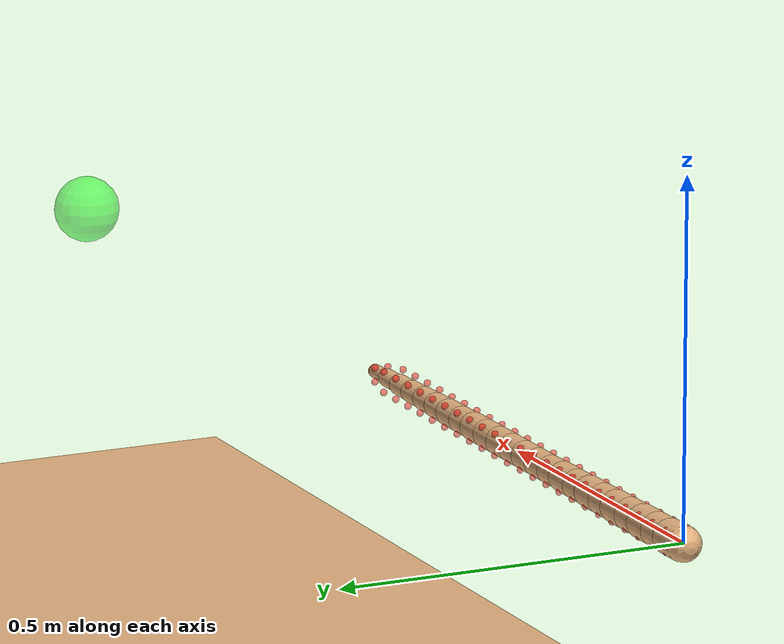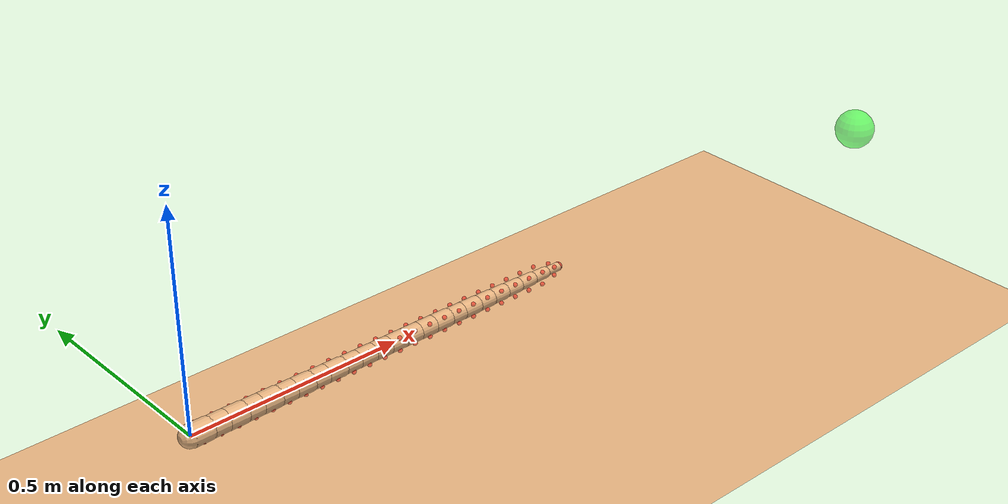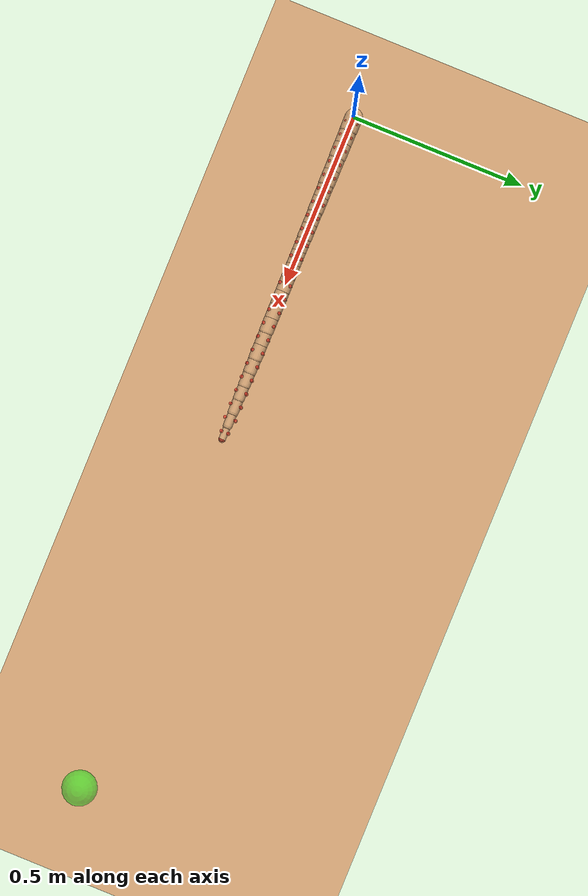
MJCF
<!-- C. elegans MuJoCo Model
     24 segments with 96 muscles (4 strings x 24)
     Based on BAAI WORM paper anatomy
-->
<mujoco model="c_elegans">
  <compiler angle="radian" coordinate="local"/>

  <option timestep="0.002" gravity="0 0 -9.81" integrator="implicit">
    <flag warmstart="enable"/>
  </option>
  <!-- Low gravity to keep worm grounded, swimming approximated by low friction -->

  <default>
    <joint damping="0.5" stiffness="0.1" armature="0.01" limited="true"/>
    <geom type="capsule" size="0.02" rgba="0.9 0.7 0.5 1" friction="0.1 0.01 0.001" density="1000"/>
    <motor ctrllimited="true" ctrlrange="-1 1" gear="0.1"/>
    <site size="0.005" rgba="1 0 0 0.5"/>
  </default>

  <asset>
    <texture type="skybox" builtin="gradient" rgb1="0.3 0.5 0.7" rgb2="0 0 0" width="512" height="512"/>
    <texture name="grid" type="2d" builtin="checker" width="512" height="512" rgb1="0.1 0.2 0.3" rgb2="0.2 0.3 0.4"/>
    <material name="grid" texture="grid" texrepeat="8 8" reflectance="0.2"/>
  </asset>

  <worldbody>
    <light pos="0 0 3" dir="0 0 -1" diffuse="1 1 1"/>
    <geom name="floor" type="plane" size="5 5 0.1" pos="0 0 -0.5" material="grid"/>

    <!-- Head segment (segment 0) -->
    <body name="seg_0" pos="0 0 0">
      <freejoint name="root"/>
      <geom name="geom_0" fromto="0 0 0 0.04 0 0" size="0.025"/>
      <site name="head" pos="0 0 0" size="0.01"/>

      <!-- Sensory sites on head -->
      <site name="sensor_left" pos="0.01 0.02 0" size="0.005"/>
      <site name="sensor_right" pos="0.01 -0.02 0" size="0.005"/>

      <!-- Muscle attachment sites for segment 0 -->
      <site name="DR_0" pos="0.02 -0.015 0.015"/>
      <site name="DL_0" pos="0.02 0.015 0.015"/>
      <site name="VR_0" pos="0.02 -0.015 -0.015"/>
      <site name="VL_0" pos="0.02 0.015 -0.015"/>

      <!-- Segment 1 -->
      <body name="seg_1" pos="0.04 0 0">
        <joint name="joint_1_dv" type="hinge" axis="0 1 0" range="-0.5 0.5"/>
        <joint name="joint_1_lr" type="hinge" axis="0 0 1" range="-0.3 0.3"/>
        <geom name="geom_1" fromto="0 0 0 0.04 0 0" size="0.024"/>
        <site name="DR_1" pos="0.02 -0.015 0.015"/>
        <site name="DL_1" pos="0.02 0.015 0.015"/>
        <site name="VR_1" pos="0.02 -0.015 -0.015"/>
        <site name="VL_1" pos="0.02 0.015 -0.015"/>

        <!-- Segment 2 -->
        <body name="seg_2" pos="0.04 0 0">
          <joint name="joint_2_dv" type="hinge" axis="0 1 0" range="-0.5 0.5"/>
          <joint name="joint_2_lr" type="hinge" axis="0 0 1" range="-0.3 0.3"/>
          <geom name="geom_2" fromto="0 0 0 0.04 0 0" size="0.024"/>
          <site name="DR_2" pos="0.02 -0.015 0.015"/>
          <site name="DL_2" pos="0.02 0.015 0.015"/>
          <site name="VR_2" pos="0.02 -0.015 -0.015"/>
          <site name="VL_2" pos="0.02 0.015 -0.015"/>

          <!-- Segment 3 -->
          <body name="seg_3" pos="0.04 0 0">
            <joint name="joint_3_dv" type="hinge" axis="0 1 0" range="-0.5 0.5"/>
            <joint name="joint_3_lr" type="hinge" axis="0 0 1" range="-0.3 0.3"/>
            <geom name="geom_3" fromto="0 0 0 0.04 0 0" size="0.023"/>
            <site name="DR_3" pos="0.02 -0.015 0.015"/>
            <site name="DL_3" pos="0.02 0.015 0.015"/>
            <site name="VR_3" pos="0.02 -0.015 -0.015"/>
            <site name="VL_3" pos="0.02 0.015 -0.015"/>

            <!-- Segment 4 -->
            <body name="seg_4" pos="0.04 0 0">
              <joint name="joint_4_dv" type="hinge" axis="0 1 0" range="-0.5 0.5"/>
              <joint name="joint_4_lr" type="hinge" axis="0 0 1" range="-0.3 0.3"/>
              <geom name="geom_4" fromto="0 0 0 0.04 0 0" size="0.023"/>
              <site name="DR_4" pos="0.02 -0.015 0.015"/>
              <site name="DL_4" pos="0.02 0.015 0.015"/>
              <site name="VR_4" pos="0.02 -0.015 -0.015"/>
              <site name="VL_4" pos="0.02 0.015 -0.015"/>

              <!-- Segment 5 -->
              <body name="seg_5" pos="0.04 0 0">
                <joint name="joint_5_dv" type="hinge" axis="0 1 0" range="-0.5 0.5"/>
                <joint name="joint_5_lr" type="hinge" axis="0 0 1" range="-0.3 0.3"/>
                <geom name="geom_5" fromto="0 0 0 0.04 0 0" size="0.022"/>
                <site name="DR_5" pos="0.02 -0.015 0.015"/>
                <site name="DL_5" pos="0.02 0.015 0.015"/>
                <site name="VR_5" pos="0.02 -0.015 -0.015"/>
                <site name="VL_5" pos="0.02 0.015 -0.015"/>

                <!-- Segment 6 -->
                <body name="seg_6" pos="0.04 0 0">
                  <joint name="joint_6_dv" type="hinge" axis="0 1 0" range="-0.5 0.5"/>
                  <joint name="joint_6_lr" type="hinge" axis="0 0 1" range="-0.3 0.3"/>
                  <geom name="geom_6" fromto="0 0 0 0.04 0 0" size="0.022"/>
                  <site name="DR_6" pos="0.02 -0.015 0.015"/>
                  <site name="DL_6" pos="0.02 0.015 0.015"/>
                  <site name="VR_6" pos="0.02 -0.015 -0.015"/>
                  <site name="VL_6" pos="0.02 0.015 -0.015"/>

                  <!-- Segment 7 -->
                  <body name="seg_7" pos="0.04 0 0">
                    <joint name="joint_7_dv" type="hinge" axis="0 1 0" range="-0.5 0.5"/>
                    <joint name="joint_7_lr" type="hinge" axis="0 0 1" range="-0.3 0.3"/>
                    <geom name="geom_7" fromto="0 0 0 0.04 0 0" size="0.021"/>
                    <site name="DR_7" pos="0.02 -0.015 0.015"/>
                    <site name="DL_7" pos="0.02 0.015 0.015"/>
                    <site name="VR_7" pos="0.02 -0.015 -0.015"/>
                    <site name="VL_7" pos="0.02 0.015 -0.015"/>

                    <!-- Segment 8 -->
                    <body name="seg_8" pos="0.04 0 0">
                      <joint name="joint_8_dv" type="hinge" axis="0 1 0" range="-0.5 0.5"/>
                      <joint name="joint_8_lr" type="hinge" axis="0 0 1" range="-0.3 0.3"/>
                      <geom name="geom_8" fromto="0 0 0 0.04 0 0" size="0.021"/>
                      <site name="DR_8" pos="0.02 -0.015 0.015"/>
                      <site name="DL_8" pos="0.02 0.015 0.015"/>
                      <site name="VR_8" pos="0.02 -0.015 -0.015"/>
                      <site name="VL_8" pos="0.02 0.015 -0.015"/>

                      <!-- Segment 9 -->
                      <body name="seg_9" pos="0.04 0 0">
                        <joint name="joint_9_dv" type="hinge" axis="0 1 0" range="-0.5 0.5"/>
                        <joint name="joint_9_lr" type="hinge" axis="0 0 1" range="-0.3 0.3"/>
                        <geom name="geom_9" fromto="0 0 0 0.04 0 0" size="0.020"/>
                        <site name="DR_9" pos="0.02 -0.015 0.015"/>
                        <site name="DL_9" pos="0.02 0.015 0.015"/>
                        <site name="VR_9" pos="0.02 -0.015 -0.015"/>
                        <site name="VL_9" pos="0.02 0.015 -0.015"/>

                        <!-- Segment 10 -->
                        <body name="seg_10" pos="0.04 0 0">
                          <joint name="joint_10_dv" type="hinge" axis="0 1 0" range="-0.5 0.5"/>
                          <joint name="joint_10_lr" type="hinge" axis="0 0 1" range="-0.3 0.3"/>
                          <geom name="geom_10" fromto="0 0 0 0.04 0 0" size="0.020"/>
                          <site name="DR_10" pos="0.02 -0.015 0.015"/>
                          <site name="DL_10" pos="0.02 0.015 0.015"/>
                          <site name="VR_10" pos="0.02 -0.015 -0.015"/>
                          <site name="VL_10" pos="0.02 0.015 -0.015"/>

                          <!-- Segment 11 -->
                          <body name="seg_11" pos="0.04 0 0">
                            <joint name="joint_11_dv" type="hinge" axis="0 1 0" range="-0.5 0.5"/>
                            <joint name="joint_11_lr" type="hinge" axis="0 0 1" range="-0.3 0.3"/>
                            <geom name="geom_11" fromto="0 0 0 0.04 0 0" size="0.020"/>
                            <site name="DR_11" pos="0.02 -0.015 0.015"/>
                            <site name="DL_11" pos="0.02 0.015 0.015"/>
                            <site name="VR_11" pos="0.02 -0.015 -0.015"/>
                            <site name="VL_11" pos="0.02 0.015 -0.015"/>

                            <!-- Segment 12 (middle) -->
                            <body name="seg_12" pos="0.04 0 0">
                              <joint name="joint_12_dv" type="hinge" axis="0 1 0" range="-0.5 0.5"/>
                              <joint name="joint_12_lr" type="hinge" axis="0 0 1" range="-0.3 0.3"/>
                              <geom name="geom_12" fromto="0 0 0 0.04 0 0" size="0.020"/>
                              <site name="DR_12" pos="0.02 -0.015 0.015"/>
                              <site name="DL_12" pos="0.02 0.015 0.015"/>
                              <site name="VR_12" pos="0.02 -0.015 -0.015"/>
                              <site name="VL_12" pos="0.02 0.015 -0.015"/>

                              <!-- Segment 13 -->
                              <body name="seg_13" pos="0.04 0 0">
                                <joint name="joint_13_dv" type="hinge" axis="0 1 0" range="-0.5 0.5"/>
                                <joint name="joint_13_lr" type="hinge" axis="0 0 1" range="-0.3 0.3"/>
                                <geom name="geom_13" fromto="0 0 0 0.04 0 0" size="0.020"/>
                                <site name="DR_13" pos="0.02 -0.015 0.015"/>
                                <site name="DL_13" pos="0.02 0.015 0.015"/>
                                <site name="VR_13" pos="0.02 -0.015 -0.015"/>
                                <site name="VL_13" pos="0.02 0.015 -0.015"/>

                                <!-- Segment 14 -->
                                <body name="seg_14" pos="0.04 0 0">
                                  <joint name="joint_14_dv" type="hinge" axis="0 1 0" range="-0.5 0.5"/>
                                  <joint name="joint_14_lr" type="hinge" axis="0 0 1" range="-0.3 0.3"/>
                                  <geom name="geom_14" fromto="0 0 0 0.04 0 0" size="0.020"/>
                                  <site name="DR_14" pos="0.02 -0.015 0.015"/>
                                  <site name="DL_14" pos="0.02 0.015 0.015"/>
                                  <site name="VR_14" pos="0.02 -0.015 -0.015"/>
                                  <site name="VL_14" pos="0.02 0.015 -0.015"/>

                                  <!-- Segment 15 -->
                                  <body name="seg_15" pos="0.04 0 0">
                                    <joint name="joint_15_dv" type="hinge" axis="0 1 0" range="-0.5 0.5"/>
                                    <joint name="joint_15_lr" type="hinge" axis="0 0 1" range="-0.3 0.3"/>
                                    <geom name="geom_15" fromto="0 0 0 0.04 0 0" size="0.020"/>
                                    <site name="DR_15" pos="0.02 -0.015 0.015"/>
                                    <site name="DL_15" pos="0.02 0.015 0.015"/>
                                    <site name="VR_15" pos="0.02 -0.015 -0.015"/>
                                    <site name="VL_15" pos="0.02 0.015 -0.015"/>

                                    <!-- Segment 16 -->
                                    <body name="seg_16" pos="0.04 0 0">
                                      <joint name="joint_16_dv" type="hinge" axis="0 1 0" range="-0.5 0.5"/>
                                      <joint name="joint_16_lr" type="hinge" axis="0 0 1" range="-0.3 0.3"/>
                                      <geom name="geom_16" fromto="0 0 0 0.04 0 0" size="0.019"/>
                                      <site name="DR_16" pos="0.02 -0.015 0.015"/>
                                      <site name="DL_16" pos="0.02 0.015 0.015"/>
                                      <site name="VR_16" pos="0.02 -0.015 -0.015"/>
                                      <site name="VL_16" pos="0.02 0.015 -0.015"/>

                                      <!-- Segment 17 -->
                                      <body name="seg_17" pos="0.04 0 0">
                                        <joint name="joint_17_dv" type="hinge" axis="0 1 0" range="-0.5 0.5"/>
                                        <joint name="joint_17_lr" type="hinge" axis="0 0 1" range="-0.3 0.3"/>
                                        <geom name="geom_17" fromto="0 0 0 0.04 0 0" size="0.019"/>
                                        <site name="DR_17" pos="0.02 -0.015 0.015"/>
                                        <site name="DL_17" pos="0.02 0.015 0.015"/>
                                        <site name="VR_17" pos="0.02 -0.015 -0.015"/>
                                        <site name="VL_17" pos="0.02 0.015 -0.015"/>

                                        <!-- Segment 18 -->
                                        <body name="seg_18" pos="0.04 0 0">
                                          <joint name="joint_18_dv" type="hinge" axis="0 1 0" range="-0.5 0.5"/>
                                          <joint name="joint_18_lr" type="hinge" axis="0 0 1" range="-0.3 0.3"/>
                                          <geom name="geom_18" fromto="0 0 0 0.04 0 0" size="0.018"/>
                                          <site name="DR_18" pos="0.02 -0.015 0.015"/>
                                          <site name="DL_18" pos="0.02 0.015 0.015"/>
                                          <site name="VR_18" pos="0.02 -0.015 -0.015"/>
                                          <site name="VL_18" pos="0.02 0.015 -0.015"/>

                                          <!-- Segment 19 -->
                                          <body name="seg_19" pos="0.04 0 0">
                                            <joint name="joint_19_dv" type="hinge" axis="0 1 0" range="-0.5 0.5"/>
                                            <joint name="joint_19_lr" type="hinge" axis="0 0 1" range="-0.3 0.3"/>
                                            <geom name="geom_19" fromto="0 0 0 0.04 0 0" size="0.017"/>
                                            <site name="DR_19" pos="0.02 -0.015 0.015"/>
                                            <site name="DL_19" pos="0.02 0.015 0.015"/>
                                            <site name="VR_19" pos="0.02 -0.015 -0.015"/>
                                            <site name="VL_19" pos="0.02 0.015 -0.015"/>

                                            <!-- Segment 20 -->
                                            <body name="seg_20" pos="0.04 0 0">
                                              <joint name="joint_20_dv" type="hinge" axis="0 1 0" range="-0.5 0.5"/>
                                              <joint name="joint_20_lr" type="hinge" axis="0 0 1" range="-0.3 0.3"/>
                                              <geom name="geom_20" fromto="0 0 0 0.04 0 0" size="0.016"/>
                                              <site name="DR_20" pos="0.02 -0.015 0.015"/>
                                              <site name="DL_20" pos="0.02 0.015 0.015"/>
                                              <site name="VR_20" pos="0.02 -0.015 -0.015"/>
                                              <site name="VL_20" pos="0.02 0.015 -0.015"/>

                                              <!-- Segment 21 -->
                                              <body name="seg_21" pos="0.04 0 0">
                                                <joint name="joint_21_dv" type="hinge" axis="0 1 0" range="-0.5 0.5"/>
                                                <joint name="joint_21_lr" type="hinge" axis="0 0 1" range="-0.3 0.3"/>
                                                <geom name="geom_21" fromto="0 0 0 0.04 0 0" size="0.015"/>
                                                <site name="DR_21" pos="0.02 -0.015 0.015"/>
                                                <site name="DL_21" pos="0.02 0.015 0.015"/>
                                                <site name="VR_21" pos="0.02 -0.015 -0.015"/>
                                                <site name="VL_21" pos="0.02 0.015 -0.015"/>

                                                <!-- Segment 22 -->
                                                <body name="seg_22" pos="0.04 0 0">
                                                  <joint name="joint_22_dv" type="hinge" axis="0 1 0" range="-0.5 0.5"/>
                                                  <joint name="joint_22_lr" type="hinge" axis="0 0 1" range="-0.3 0.3"/>
                                                  <geom name="geom_22" fromto="0 0 0 0.04 0 0" size="0.013"/>
                                                  <site name="DR_22" pos="0.02 -0.015 0.015"/>
                                                  <site name="DL_22" pos="0.02 0.015 0.015"/>
                                                  <site name="VR_22" pos="0.02 -0.015 -0.015"/>
                                                  <site name="VL_22" pos="0.02 0.015 -0.015"/>

                                                  <!-- Segment 23 (tail) -->
                                                  <body name="seg_23" pos="0.04 0 0">
                                                    <joint name="joint_23_dv" type="hinge" axis="0 1 0" range="-0.5 0.5"/>
                                                    <joint name="joint_23_lr" type="hinge" axis="0 0 1" range="-0.3 0.3"/>
                                                    <geom name="geom_23" fromto="0 0 0 0.04 0 0" size="0.010"/>
                                                    <site name="tail" pos="0.04 0 0" size="0.01"/>
                                                    <site name="DR_23" pos="0.02 -0.010 0.010"/>
                                                    <site name="DL_23" pos="0.02 0.010 0.010"/>
                                                    <site name="VR_23" pos="0.02 -0.010 -0.010"/>
                                                    <site name="VL_23" pos="0.02 0.010 -0.010"/>
                                                  </body>
                                                </body>
                                              </body>
                                            </body>
                                          </body>
                                        </body>
                                      </body>
                                    </body>
                                  </body>
                                </body>
                              </body>
                            </body>
                          </body>
                        </body>
                      </body>
                    </body>
                  </body>
                </body>
              </body>
            </body>
          </body>
        </body>
      </body>
    </body>

    <!-- Food/attractor source (optional, for chemotaxis) -->
    <body name="food" pos="2.0 0 0">
      <geom type="sphere" size="0.05" rgba="0 1 0 0.5"/>
    </body>
  </worldbody>

  <actuator>
    <!-- Dorsal Right (DR) muscles - 24 actuators -->
    <motor name="DR_0" joint="joint_1_dv" ctrllimited="true" ctrlrange="-1 1"/>
    <motor name="DR_1" joint="joint_2_dv" ctrllimited="true" ctrlrange="-1 1"/>
    <motor name="DR_2" joint="joint_3_dv" ctrllimited="true" ctrlrange="-1 1"/>
    <motor name="DR_3" joint="joint_4_dv" ctrllimited="true" ctrlrange="-1 1"/>
    <motor name="DR_4" joint="joint_5_dv" ctrllimited="true" ctrlrange="-1 1"/>
    <motor name="DR_5" joint="joint_6_dv" ctrllimited="true" ctrlrange="-1 1"/>
    <motor name="DR_6" joint="joint_7_dv" ctrllimited="true" ctrlrange="-1 1"/>
    <motor name="DR_7" joint="joint_8_dv" ctrllimited="true" ctrlrange="-1 1"/>
    <motor name="DR_8" joint="joint_9_dv" ctrllimited="true" ctrlrange="-1 1"/>
    <motor name="DR_9" joint="joint_10_dv" ctrllimited="true" ctrlrange="-1 1"/>
    <motor name="DR_10" joint="joint_11_dv" ctrllimited="true" ctrlrange="-1 1"/>
    <motor name="DR_11" joint="joint_12_dv" ctrllimited="true" ctrlrange="-1 1"/>
    <motor name="DR_12" joint="joint_13_dv" ctrllimited="true" ctrlrange="-1 1"/>
    <motor name="DR_13" joint="joint_14_dv" ctrllimited="true" ctrlrange="-1 1"/>
    <motor name="DR_14" joint="joint_15_dv" ctrllimited="true" ctrlrange="-1 1"/>
    <motor name="DR_15" joint="joint_16_dv" ctrllimited="true" ctrlrange="-1 1"/>
    <motor name="DR_16" joint="joint_17_dv" ctrllimited="true" ctrlrange="-1 1"/>
    <motor name="DR_17" joint="joint_18_dv" ctrllimited="true" ctrlrange="-1 1"/>
    <motor name="DR_18" joint="joint_19_dv" ctrllimited="true" ctrlrange="-1 1"/>
    <motor name="DR_19" joint="joint_20_dv" ctrllimited="true" ctrlrange="-1 1"/>
    <motor name="DR_20" joint="joint_21_dv" ctrllimited="true" ctrlrange="-1 1"/>
    <motor name="DR_21" joint="joint_22_dv" ctrllimited="true" ctrlrange="-1 1"/>
    <motor name="DR_22" joint="joint_23_dv" ctrllimited="true" ctrlrange="-1 1"/>
    <motor name="DR_23" joint="joint_23_dv" ctrllimited="true" ctrlrange="-1 1"/>

    <!-- Dorsal Left (DL) muscles - shared with DR for dorsoventral -->
    <motor name="DL_0" joint="joint_1_dv" ctrllimited="true" ctrlrange="-1 1"/>
    <motor name="DL_1" joint="joint_2_dv" ctrllimited="true" ctrlrange="-1 1"/>
    <motor name="DL_2" joint="joint_3_dv" ctrllimited="true" ctrlrange="-1 1"/>
    <motor name="DL_3" joint="joint_4_dv" ctrllimited="true" ctrlrange="-1 1"/>
    <motor name="DL_4" joint="joint_5_dv" ctrllimited="true" ctrlrange="-1 1"/>
    <motor name="DL_5" joint="joint_6_dv" ctrllimited="true" ctrlrange="-1 1"/>
    <motor name="DL_6" joint="joint_7_dv" ctrllimited="true" ctrlrange="-1 1"/>
    <motor name="DL_7" joint="joint_8_dv" ctrllimited="true" ctrlrange="-1 1"/>
    <motor name="DL_8" joint="joint_9_dv" ctrllimited="true" ctrlrange="-1 1"/>
    <motor name="DL_9" joint="joint_10_dv" ctrllimited="true" ctrlrange="-1 1"/>
    <motor name="DL_10" joint="joint_11_dv" ctrllimited="true" ctrlrange="-1 1"/>
    <motor name="DL_11" joint="joint_12_dv" ctrllimited="true" ctrlrange="-1 1"/>
    <motor name="DL_12" joint="joint_13_dv" ctrllimited="true" ctrlrange="-1 1"/>
    <motor name="DL_13" joint="joint_14_dv" ctrllimited="true" ctrlrange="-1 1"/>
    <motor name="DL_14" joint="joint_15_dv" ctrllimited="true" ctrlrange="-1 1"/>
    <motor name="DL_15" joint="joint_16_dv" ctrllimited="true" ctrlrange="-1 1"/>
    <motor name="DL_16" joint="joint_17_dv" ctrllimited="true" ctrlrange="-1 1"/>
    <motor name="DL_17" joint="joint_18_dv" ctrllimited="true" ctrlrange="-1 1"/>
    <motor name="DL_18" joint="joint_19_dv" ctrllimited="true" ctrlrange="-1 1"/>
    <motor name="DL_19" joint="joint_20_dv" ctrllimited="true" ctrlrange="-1 1"/>
    <motor name="DL_20" joint="joint_21_dv" ctrllimited="true" ctrlrange="-1 1"/>
    <motor name="DL_21" joint="joint_22_dv" ctrllimited="true" ctrlrange="-1 1"/>
    <motor name="DL_22" joint="joint_23_dv" ctrllimited="true" ctrlrange="-1 1"/>
    <motor name="DL_23" joint="joint_23_dv" ctrllimited="true" ctrlrange="-1 1"/>

    <!-- Ventral Right (VR) muscles - left-right control -->
    <motor name="VR_0" joint="joint_1_lr" ctrllimited="true" ctrlrange="-1 1"/>
    <motor name="VR_1" joint="joint_2_lr" ctrllimited="true" ctrlrange="-1 1"/>
    <motor name="VR_2" joint="joint_3_lr" ctrllimited="true" ctrlrange="-1 1"/>
    <motor name="VR_3" joint="joint_4_lr" ctrllimited="true" ctrlrange="-1 1"/>
    <motor name="VR_4" joint="joint_5_lr" ctrllimited="true" ctrlrange="-1 1"/>
    <motor name="VR_5" joint="joint_6_lr" ctrllimited="true" ctrlrange="-1 1"/>
    <motor name="VR_6" joint="joint_7_lr" ctrllimited="true" ctrlrange="-1 1"/>
    <motor name="VR_7" joint="joint_8_lr" ctrllimited="true" ctrlrange="-1 1"/>
    <motor name="VR_8" joint="joint_9_lr" ctrllimited="true" ctrlrange="-1 1"/>
    <motor name="VR_9" joint="joint_10_lr" ctrllimited="true" ctrlrange="-1 1"/>
    <motor name="VR_10" joint="joint_11_lr" ctrllimited="true" ctrlrange="-1 1"/>
    <motor name="VR_11" joint="joint_12_lr" ctrllimited="true" ctrlrange="-1 1"/>
    <motor name="VR_12" joint="joint_13_lr" ctrllimited="true" ctrlrange="-1 1"/>
    <motor name="VR_13" joint="joint_14_lr" ctrllimited="true" ctrlrange="-1 1"/>
    <motor name="VR_14" joint="joint_15_lr" ctrllimited="true" ctrlrange="-1 1"/>
    <motor name="VR_15" joint="joint_16_lr" ctrllimited="true" ctrlrange="-1 1"/>
    <motor name="VR_16" joint="joint_17_lr" ctrllimited="true" ctrlrange="-1 1"/>
    <motor name="VR_17" joint="joint_18_lr" ctrllimited="true" ctrlrange="-1 1"/>
    <motor name="VR_18" joint="joint_19_lr" ctrllimited="true" ctrlrange="-1 1"/>
    <motor name="VR_19" joint="joint_20_lr" ctrllimited="true" ctrlrange="-1 1"/>
    <motor name="VR_20" joint="joint_21_lr" ctrllimited="true" ctrlrange="-1 1"/>
    <motor name="VR_21" joint="joint_22_lr" ctrllimited="true" ctrlrange="-1 1"/>
    <motor name="VR_22" joint="joint_23_lr" ctrllimited="true" ctrlrange="-1 1"/>
    <motor name="VR_23" joint="joint_23_lr" ctrllimited="true" ctrlrange="-1 1"/>

    <!-- Ventral Left (VL) muscles -->
    <motor name="VL_0" joint="joint_1_lr" gear="-0.1" ctrllimited="true" ctrlrange="-1 1"/>
    <motor name="VL_1" joint="joint_2_lr" gear="-0.1" ctrllimited="true" ctrlrange="-1 1"/>
    <motor name="VL_2" joint="joint_3_lr" gear="-0.1" ctrllimited="true" ctrlrange="-1 1"/>
    <motor name="VL_3" joint="joint_4_lr" gear="-0.1" ctrllimited="true" ctrlrange="-1 1"/>
    <motor name="VL_4" joint="joint_5_lr" gear="-0.1" ctrllimited="true" ctrlrange="-1 1"/>
    <motor name="VL_5" joint="joint_6_lr" gear="-0.1" ctrllimited="true" ctrlrange="-1 1"/>
    <motor name="VL_6" joint="joint_7_lr" gear="-0.1" ctrllimited="true" ctrlrange="-1 1"/>
    <motor name="VL_7" joint="joint_8_lr" gear="-0.1" ctrllimited="true" ctrlrange="-1 1"/>
    <motor name="VL_8" joint="joint_9_lr" gear="-0.1" ctrllimited="true" ctrlrange="-1 1"/>
    <motor name="VL_9" joint="joint_10_lr" gear="-0.1" ctrllimited="true" ctrlrange="-1 1"/>
    <motor name="VL_10" joint="joint_11_lr" gear="-0.1" ctrllimited="true" ctrlrange="-1 1"/>
    <motor name="VL_11" joint="joint_12_lr" gear="-0.1" ctrllimited="true" ctrlrange="-1 1"/>
    <motor name="VL_12" joint="joint_13_lr" gear="-0.1" ctrllimited="true" ctrlrange="-1 1"/>
    <motor name="VL_13" joint="joint_14_lr" gear="-0.1" ctrllimited="true" ctrlrange="-1 1"/>
    <motor name="VL_14" joint="joint_15_lr" gear="-0.1" ctrllimited="true" ctrlrange="-1 1"/>
    <motor name="VL_15" joint="joint_16_lr" gear="-0.1" ctrllimited="true" ctrlrange="-1 1"/>
    <motor name="VL_16" joint="joint_17_lr" gear="-0.1" ctrllimited="true" ctrlrange="-1 1"/>
    <motor name="VL_17" joint="joint_18_lr" gear="-0.1" ctrllimited="true" ctrlrange="-1 1"/>
    <motor name="VL_18" joint="joint_19_lr" gear="-0.1" ctrllimited="true" ctrlrange="-1 1"/>
    <motor name="VL_19" joint="joint_20_lr" gear="-0.1" ctrllimited="true" ctrlrange="-1 1"/>
    <motor name="VL_20" joint="joint_21_lr" gear="-0.1" ctrllimited="true" ctrlrange="-1 1"/>
    <motor name="VL_21" joint="joint_22_lr" gear="-0.1" ctrllimited="true" ctrlrange="-1 1"/>
    <motor name="VL_22" joint="joint_23_lr" gear="-0.1" ctrllimited="true" ctrlrange="-1 1"/>
    <motor name="VL_23" joint="joint_23_lr" gear="-0.1" ctrllimited="true" ctrlrange="-1 1"/>
  </actuator>

  <sensor>
    <!-- Proprioception: joint angles -->
    <jointpos name="prop_1_dv" joint="joint_1_dv"/>
    <jointpos name="prop_1_lr" joint="joint_1_lr"/>
    <jointpos name="prop_2_dv" joint="joint_2_dv"/>
    <jointpos name="prop_2_lr" joint="joint_2_lr"/>
    <jointpos name="prop_3_dv" joint="joint_3_dv"/>
    <jointpos name="prop_3_lr" joint="joint_3_lr"/>
    <jointpos name="prop_4_dv" joint="joint_4_dv"/>
    <jointpos name="prop_4_lr" joint="joint_4_lr"/>
    <jointpos name="prop_5_dv" joint="joint_5_dv"/>
    <jointpos name="prop_5_lr" joint="joint_5_lr"/>
    <jointpos name="prop_6_dv" joint="joint_6_dv"/>
    <jointpos name="prop_6_lr" joint="joint_6_lr"/>
    <jointpos name="prop_7_dv" joint="joint_7_dv"/>
    <jointpos name="prop_7_lr" joint="joint_7_lr"/>
    <jointpos name="prop_8_dv" joint="joint_8_dv"/>
    <jointpos name="prop_8_lr" joint="joint_8_lr"/>
    <jointpos name="prop_9_dv" joint="joint_9_dv"/>
    <jointpos name="prop_9_lr" joint="joint_9_lr"/>
    <jointpos name="prop_10_dv" joint="joint_10_dv"/>
    <jointpos name="prop_10_lr" joint="joint_10_lr"/>
    <jointpos name="prop_11_dv" joint="joint_11_dv"/>
    <jointpos name="prop_11_lr" joint="joint_11_lr"/>
    <jointpos name="prop_12_dv" joint="joint_12_dv"/>
    <jointpos name="prop_12_lr" joint="joint_12_lr"/>
    <jointpos name="prop_13_dv" joint="joint_13_dv"/>
    <jointpos name="prop_13_lr" joint="joint_13_lr"/>
    <jointpos name="prop_14_dv" joint="joint_14_dv"/>
    <jointpos name="prop_14_lr" joint="joint_14_lr"/>
    <jointpos name="prop_15_dv" joint="joint_15_dv"/>
    <jointpos name="prop_15_lr" joint="joint_15_lr"/>
    <jointpos name="prop_16_dv" joint="joint_16_dv"/>
    <jointpos name="prop_16_lr" joint="joint_16_lr"/>
    <jointpos name="prop_17_dv" joint="joint_17_dv"/>
    <jointpos name="prop_17_lr" joint="joint_17_lr"/>
    <jointpos name="prop_18_dv" joint="joint_18_dv"/>
    <jointpos name="prop_18_lr" joint="joint_18_lr"/>
    <jointpos name="prop_19_dv" joint="joint_19_dv"/>
    <jointpos name="prop_19_lr" joint="joint_19_lr"/>
    <jointpos name="prop_20_dv" joint="joint_20_dv"/>
    <jointpos name="prop_20_lr" joint="joint_20_lr"/>
    <jointpos name="prop_21_dv" joint="joint_21_dv"/>
    <jointpos name="prop_21_lr" joint="joint_21_lr"/>
    <jointpos name="prop_22_dv" joint="joint_22_dv"/>
    <jointpos name="prop_22_lr" joint="joint_22_lr"/>
    <jointpos name="prop_23_dv" joint="joint_23_dv"/>
    <jointpos name="prop_23_lr" joint="joint_23_lr"/>

    <!-- Joint velocities -->
    <jointvel name="vel_1_dv" joint="joint_1_dv"/>
    <jointvel name="vel_1_lr" joint="joint_1_lr"/>
    <jointvel name="vel_12_dv" joint="joint_12_dv"/>
    <jointvel name="vel_12_lr" joint="joint_12_lr"/>
    <jointvel name="vel_23_dv" joint="joint_23_dv"/>
    <jointvel name="vel_23_lr" joint="joint_23_lr"/>

    <!-- Head position for tracking -->
    <framepos name="head_pos" objtype="site" objname="head"/>
    <framequat name="head_quat" objtype="site" objname="head"/>

    <!-- Tail position -->
    <framepos name="tail_pos" objtype="site" objname="tail"/>
  </sensor>
</mujoco>
